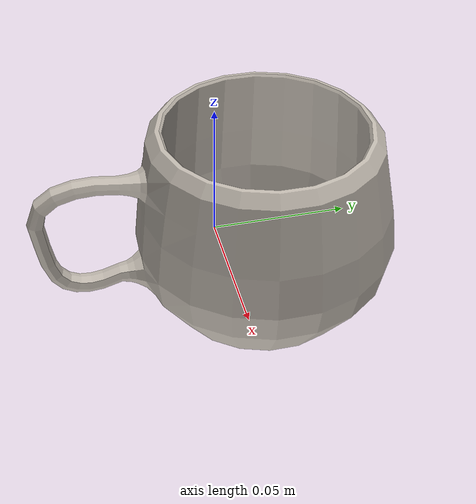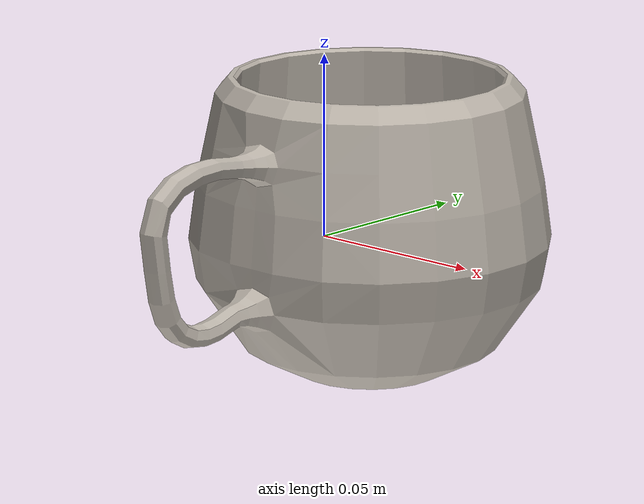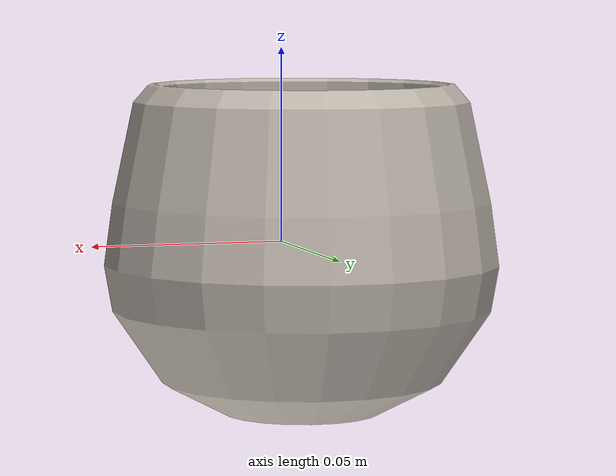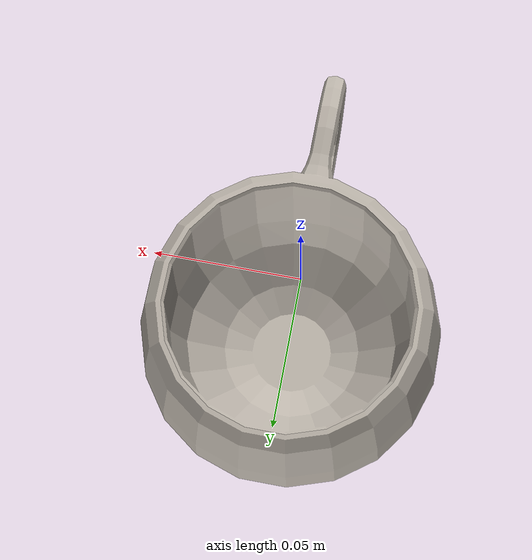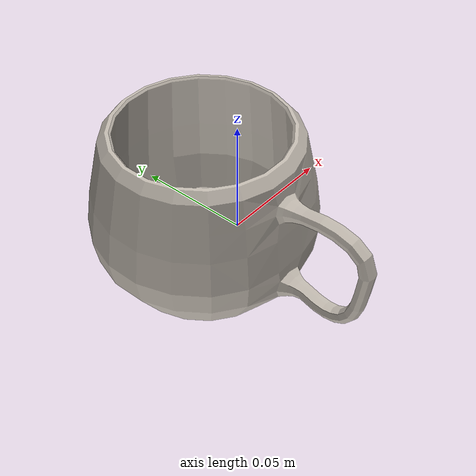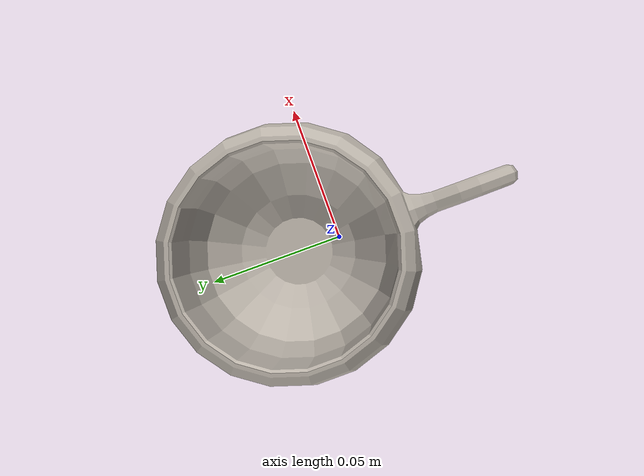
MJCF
<mujoco model="mug_41">
  <asset>
    <mesh file="visual/model_normalized_0.obj" name="model_normalized_0_vis" scale="0.135 0.135 0.135" refquat="0.7071067811865475 0.0 0.0 0.7071067811865476"/>
    <texture type="2d" name="image0" file="visual/image0.png"/>
    <material name="standardSurface2SG" texture="image0" specular="0.1" shininess="0.2" emission="0.15"/>
    <mesh file="collision/collision_mesh_collision_0.obj" name="mug_collision_mesh_0" scale="0.135 0.135 0.135" refquat="0.7071067811865475 0.0 0.0 0.7071067811865476"/>
    <mesh file="collision/collision_mesh_collision_1.obj" name="mug_collision_mesh_1" scale="0.135 0.135 0.135" refquat="0.7071067811865475 0.0 0.0 0.7071067811865476"/>
    <mesh file="collision/collision_mesh_collision_2.obj" name="mug_collision_mesh_2" scale="0.135 0.135 0.135" refquat="0.7071067811865475 0.0 0.0 0.7071067811865476"/>
    <mesh file="collision/collision_mesh_collision_3.obj" name="mug_collision_mesh_3" scale="0.135 0.135 0.135" refquat="0.7071067811865475 0.0 0.0 0.7071067811865476"/>
    <mesh file="collision/collision_mesh_collision_4.obj" name="mug_collision_mesh_4" scale="0.135 0.135 0.135" refquat="0.7071067811865475 0.0 0.0 0.7071067811865476"/>
    <mesh file="collision/collision_mesh_collision_5.obj" name="mug_collision_mesh_5" scale="0.135 0.135 0.135" refquat="0.7071067811865475 0.0 0.0 0.7071067811865476"/>
    <mesh file="collision/collision_mesh_collision_6.obj" name="mug_collision_mesh_6" scale="0.135 0.135 0.135" refquat="0.7071067811865475 0.0 0.0 0.7071067811865476"/>
    <mesh file="collision/collision_mesh_collision_7.obj" name="mug_collision_mesh_7" scale="0.135 0.135 0.135" refquat="0.7071067811865475 0.0 0.0 0.7071067811865476"/>
    <mesh file="collision/collision_mesh_collision_8.obj" name="mug_collision_mesh_8" scale="0.135 0.135 0.135" refquat="0.7071067811865475 0.0 0.0 0.7071067811865476"/>
    <mesh file="collision/collision_mesh_collision_9.obj" name="mug_collision_mesh_9" scale="0.135 0.135 0.135" refquat="0.7071067811865475 0.0 0.0 0.7071067811865476"/>
    <mesh file="collision/collision_mesh_collision_10.obj" name="mug_collision_mesh_10" scale="0.135 0.135 0.135" refquat="0.7071067811865475 0.0 0.0 0.7071067811865476"/>
    <mesh file="collision/collision_mesh_collision_11.obj" name="mug_collision_mesh_11" scale="0.135 0.135 0.135" refquat="0.7071067811865475 0.0 0.0 0.7071067811865476"/>
    <mesh file="collision/collision_mesh_collision_12.obj" name="mug_collision_mesh_12" scale="0.135 0.135 0.135" refquat="0.7071067811865475 0.0 0.0 0.7071067811865476"/>
    <mesh file="collision/collision_mesh_collision_13.obj" name="mug_collision_mesh_13" scale="0.135 0.135 0.135" refquat="0.7071067811865475 0.0 0.0 0.7071067811865476"/>
    <mesh file="collision/collision_mesh_collision_14.obj" name="mug_collision_mesh_14" scale="0.135 0.135 0.135" refquat="0.7071067811865475 0.0 0.0 0.7071067811865476"/>
    <mesh file="collision/collision_mesh_collision_15.obj" name="mug_collision_mesh_15" scale="0.135 0.135 0.135" refquat="0.7071067811865475 0.0 0.0 0.7071067811865476"/>
  </asset>
  <default>
    <default class="region">
      <geom group="1" conaffinity="0" contype="0" rgba="0 1 0 0" density="0"/>
    </default>
    <default class="collision">
      <geom group="3" rgba="0.5 0 0 0.5" density="0"/>
    </default>
  </default>
  <worldbody>
    <body>
      <body name="object">
        <geom density="0" friction="1.2 0.05 0.001" type="mesh" mesh="model_normalized_0_vis" conaffinity="0" contype="0" group="1" material="standardSurface2SG" mass="0.3"/>
        <geom class="region" name="reg_bbox" type="box" pos="-3.6449999999549344e-08 9.363464999999544e-05 -3.8780775000001184e-05" size="0.0497605626 0.06805786860000002 0.042101022375" density="0"/>        <geom mesh="mug_collision_mesh_0" type="mesh" class="collision" density="0"/>
        <geom mesh="mug_collision_mesh_1" type="mesh" class="collision" density="0"/>
        <geom mesh="mug_collision_mesh_2" type="mesh" class="collision" density="0"/>
        <geom mesh="mug_collision_mesh_3" type="mesh" class="collision" density="0"/>
        <geom mesh="mug_collision_mesh_4" type="mesh" class="collision" density="0"/>
        <geom mesh="mug_collision_mesh_5" type="mesh" class="collision" density="0"/>
        <geom mesh="mug_collision_mesh_6" type="mesh" class="collision" density="0"/>
        <geom mesh="mug_collision_mesh_7" type="mesh" class="collision" density="0"/>
        <geom mesh="mug_collision_mesh_8" type="mesh" class="collision" density="0"/>
        <geom mesh="mug_collision_mesh_9" type="mesh" class="collision" density="0"/>
        <geom mesh="mug_collision_mesh_10" type="mesh" class="collision" density="0"/>
        <geom mesh="mug_collision_mesh_11" type="mesh" class="collision" density="0"/>
        <geom mesh="mug_collision_mesh_12" type="mesh" class="collision" density="0"/>
        <geom mesh="mug_collision_mesh_13" type="mesh" class="collision" density="0"/>
        <geom mesh="mug_collision_mesh_14" type="mesh" class="collision" density="0"/>
        <geom mesh="mug_collision_mesh_15" type="mesh" class="collision" density="0"/>
        <geom rgba="0 0 0 0" size="0.038 0.028" pos="0 0.018 0.005" type="cylinder" name="liquid" class="region" density="0"/>        <geom rgba="0 0 0 0 " size="0.0345 0.03" pos="0 0.018 0.009" type="cylinder" name="reg_int" class="region" density="0"/>      </body>
    </body>
  </worldbody>
</mujoco>
